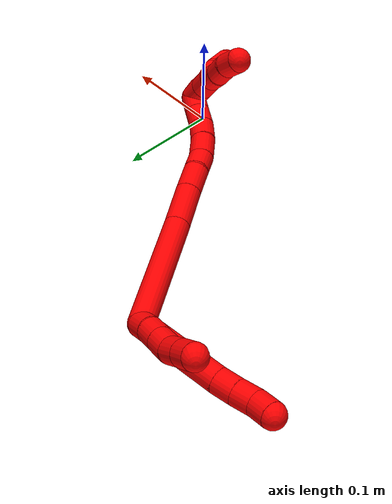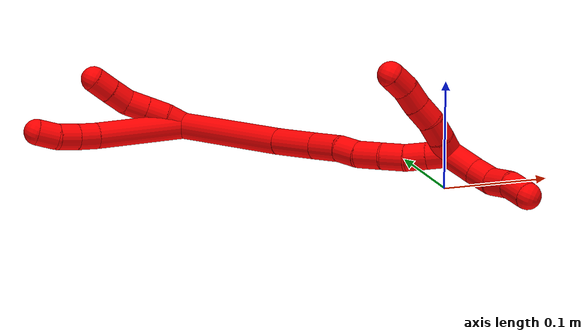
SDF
<sdf version="1.7">
 <world name="default">
  <model name="2">
   <static>0</static>
   <link name="2">
    <collision name="collision-cylinder-e_1_2_8">
     <pose>-0.01622 -0.027544 0.031265 0.722207 -0.371228 -0.141595</pose>
     <geometry><cylinder><radius>0.0125</radius><length>0.089425</length></cylinder></geometry>
     <surface>
      <friction><ode><mu>1.16</mu><mu2>1.16</mu2><slip1>0</slip1><slip2>0</slip2></ode></friction>
      <contact><ode><kp>1e+06</kp><kd>1</kd><max_vel>0</max_vel><min_depth>0.001</min_depth></ode></contact>
     </surface>
    </collision>
    <visual name="visual-cylinder-e_1_2_8">
     <pose>-0.01622 -0.027544 0.031265 0.722207 -0.371228 -0.141595</pose>
     <geometry><cylinder><radius>0.0125</radius><length>0.089425</length></cylinder></geometry>
     <material><ambient>1 0 0 1</ambient></material>
    </visual>
    <collision name="collision-cylinder-e_2_8_9">
     <pose>-0.035395 -0.06168 0.069481 0.75896 -0.299208 -0.120081</pose>
     <geometry><cylinder><radius>0.0125</radius><length>0.020052</length></cylinder></geometry>
     <surface>
      <friction><ode><mu>1.16</mu><mu2>1.16</mu2><slip1>0</slip1><slip2>0</slip2></ode></friction>
      <contact><ode><kp>1e+06</kp><kd>1</kd><max_vel>0</max_vel><min_depth>0.001</min_depth></ode></contact>
     </surface>
    </collision>
    <visual name="visual-cylinder-e_2_8_9">
     <pose>-0.035395 -0.06168 0.069481 0.75896 -0.299208 -0.120081</pose>
     <geometry><cylinder><radius>0.0125</radius><length>0.020052</length></cylinder></geometry>
     <material><ambient>1 0 0 1</ambient></material>
    </visual>
    <collision name="collision-cylinder-e_3_9_10">
     <pose>-0.040736 -0.075056 0.083415 0.770819 -0.240266 -0.097869</pose>
     <geometry><cylinder><radius>0.0125</radius><length>0.020046</length></cylinder></geometry>
     <surface>
      <friction><ode><mu>1.16</mu><mu2>1.16</mu2><slip1>0</slip1><slip2>0</slip2></ode></friction>
      <contact><ode><kp>1e+06</kp><kd>1</kd><max_vel>0</max_vel><min_depth>0.001</min_depth></ode></contact>
     </surface>
    </collision>
    <visual name="visual-cylinder-e_3_9_10">
     <pose>-0.040736 -0.075056 0.083415 0.770819 -0.240266 -0.097869</pose>
     <geometry><cylinder><radius>0.0125</radius><length>0.020046</length></cylinder></geometry>
     <material><ambient>1 0 0 1</ambient></material>
    </visual>
    <collision name="collision-cylinder-e_4_10_6">
     <pose>-0.043921 -0.086902 0.099261 0.519075 -0.078185 -0.02077</pose>
     <geometry><cylinder><radius>0.0125</radius><length>0.020476</length></cylinder></geometry>
     <surface>
      <friction><ode><mu>1.16</mu><mu2>1.16</mu2><slip1>0</slip1><slip2>0</slip2></ode></friction>
      <contact><ode><kp>1e+06</kp><kd>1</kd><max_vel>0</max_vel><min_depth>0.001</min_depth></ode></contact>
     </surface>
    </collision>
    <visual name="visual-cylinder-e_4_10_6">
     <pose>-0.043921 -0.086902 0.099261 0.519075 -0.078185 -0.02077</pose>
     <geometry><cylinder><radius>0.0125</radius><length>0.020476</length></cylinder></geometry>
     <material><ambient>1 0 0 1</ambient></material>
    </visual>
    <collision name="collision-cylinder-e_1_2_11">
     <pose>0.001577 -0.004049 0.009007 0.422487 0.158381 0.034032</pose>
     <geometry><cylinder><radius>0.0125</radius><length>0.02</length></cylinder></geometry>
     <surface>
      <friction><ode><mu>1.16</mu><mu2>1.16</mu2><slip1>0</slip1><slip2>0</slip2></ode></friction>
      <contact><ode><kp>1e+06</kp><kd>1</kd><max_vel>0</max_vel><min_depth>0.001</min_depth></ode></contact>
     </surface>
    </collision>
    <visual name="visual-cylinder-e_1_2_11">
     <pose>0.001577 -0.004049 0.009007 0.422487 0.158381 0.034032</pose>
     <geometry><cylinder><radius>0.0125</radius><length>0.02</length></cylinder></geometry>
     <material><ambient>1 0 0 1</ambient></material>
    </visual>
    <collision name="collision-cylinder-e_2_11_12">
     <pose>0.003198 -0.011859 0.027279 0.385601 0.004371 0.000853</pose>
     <geometry><cylinder><radius>0.0125</radius><length>0.02</length></cylinder></geometry>
     <surface>
      <friction><ode><mu>1.16</mu><mu2>1.16</mu2><slip1>0</slip1><slip2>0</slip2></ode></friction>
      <contact><ode><kp>1e+06</kp><kd>1</kd><max_vel>0</max_vel><min_depth>0.001</min_depth></ode></contact>
     </surface>
    </collision>
    <visual name="visual-cylinder-e_2_11_12">
     <pose>0.003198 -0.011859 0.027279 0.385601 0.004371 0.000853</pose>
     <geometry><cylinder><radius>0.0125</radius><length>0.02</length></cylinder></geometry>
     <material><ambient>1 0 0 1</ambient></material>
    </visual>
    <collision name="collision-cylinder-e_3_12_13">
     <pose>0.003317 -0.019464 0.045776 0.394583 0.007527 0.001505</pose>
     <geometry><cylinder><radius>0.0125</radius><length>0.02</length></cylinder></geometry>
     <surface>
      <friction><ode><mu>1.16</mu><mu2>1.16</mu2><slip1>0</slip1><slip2>0</slip2></ode></friction>
      <contact><ode><kp>1e+06</kp><kd>1</kd><max_vel>0</max_vel><min_depth>0.001</min_depth></ode></contact>
     </surface>
    </collision>
    <visual name="visual-cylinder-e_3_12_13">
     <pose>0.003317 -0.019464 0.045776 0.394583 0.007527 0.001505</pose>
     <geometry><cylinder><radius>0.0125</radius><length>0.02</length></cylinder></geometry>
     <material><ambient>1 0 0 1</ambient></material>
    </visual>
    <collision name="collision-cylinder-e_4_13_14">
     <pose>0.006144 -0.028358 0.063188 0.552926 0.278749 0.079563</pose>
     <geometry><cylinder><radius>0.0125</radius><length>0.02</length></cylinder></geometry>
     <surface>
      <friction><ode><mu>1.16</mu><mu2>1.16</mu2><slip1>0</slip1><slip2>0</slip2></ode></friction>
      <contact><ode><kp>1e+06</kp><kd>1</kd><max_vel>0</max_vel><min_depth>0.001</min_depth></ode></contact>
     </surface>
    </collision>
    <visual name="visual-cylinder-e_4_13_14">
     <pose>0.006144 -0.028358 0.063188 0.552926 0.278749 0.079563</pose>
     <geometry><cylinder><radius>0.0125</radius><length>0.02</length></cylinder></geometry>
     <material><ambient>1 0 0 1</ambient></material>
    </visual>
    <collision name="collision-cylinder-e_5_14_5">
     <pose>0.011798 -0.038038 0.079744 0.505222 0.294507 0.076536</pose>
     <geometry><cylinder><radius>0.0125</radius><length>0.02</length></cylinder></geometry>
     <surface>
      <friction><ode><mu>1.16</mu><mu2>1.16</mu2><slip1>0</slip1><slip2>0</slip2></ode></friction>
      <contact><ode><kp>1e+06</kp><kd>1</kd><max_vel>0</max_vel><min_depth>0.001</min_depth></ode></contact>
     </surface>
    </collision>
    <visual name="visual-cylinder-e_5_14_5">
     <pose>0.011798 -0.038038 0.079744 0.505222 0.294507 0.076536</pose>
     <geometry><cylinder><radius>0.0125</radius><length>0.02</length></cylinder></geometry>
     <material><ambient>1 0 0 1</ambient></material>
    </visual>
    <collision name="collision-cylinder-e_1_2_15">
     <pose>0.015513 -0.024486 -0.052069 2.70203 0.263347 1.0703</pose>
     <geometry><cylinder><radius>0.0125</radius><length>0.119188</length></cylinder></geometry>
     <surface>
      <friction><ode><mu>1.16</mu><mu2>1.16</mu2><slip1>0</slip1><slip2>0</slip2></ode></friction>
      <contact><ode><kp>1e+06</kp><kd>1</kd><max_vel>0</max_vel><min_depth>0.001</min_depth></ode></contact>
     </surface>
    </collision>
    <visual name="visual-cylinder-e_1_2_15">
     <pose>0.015513 -0.024486 -0.052069 2.70203 0.263347 1.0703</pose>
     <geometry><cylinder><radius>0.0125</radius><length>0.119188</length></cylinder></geometry>
     <material><ambient>1 0 0 1</ambient></material>
    </visual>
    <collision name="collision-cylinder-e_2_15_16">
     <pose>0.037434 -0.057777 -0.123055 2.70593 0.29796 1.19176</pose>
     <geometry><cylinder><radius>0.0125</radius><length>0.043655</length></cylinder></geometry>
     <surface>
      <friction><ode><mu>1.16</mu><mu2>1.16</mu2><slip1>0</slip1><slip2>0</slip2></ode></friction>
      <contact><ode><kp>1e+06</kp><kd>1</kd><max_vel>0</max_vel><min_depth>0.001</min_depth></ode></contact>
     </surface>
    </collision>
    <visual name="visual-cylinder-e_2_15_16">
     <pose>0.037434 -0.057777 -0.123055 2.70593 0.29796 1.19176</pose>
     <geometry><cylinder><radius>0.0125</radius><length>0.043655</length></cylinder></geometry>
     <material><ambient>1 0 0 1</ambient></material>
    </visual>
    <collision name="collision-cylinder-e_3_16_17">
     <pose>0.048174 -0.072833 -0.154241 2.6704 0.304789 1.13833</pose>
     <geometry><cylinder><radius>0.0125</radius><length>0.028869</length></cylinder></geometry>
     <surface>
      <friction><ode><mu>1.16</mu><mu2>1.16</mu2><slip1>0</slip1><slip2>0</slip2></ode></friction>
      <contact><ode><kp>1e+06</kp><kd>1</kd><max_vel>0</max_vel><min_depth>0.001</min_depth></ode></contact>
     </surface>
    </collision>
    <visual name="visual-cylinder-e_3_16_17">
     <pose>0.048174 -0.072833 -0.154241 2.6704 0.304789 1.13833</pose>
     <geometry><cylinder><radius>0.0125</radius><length>0.028869</length></cylinder></geometry>
     <material><ambient>1 0 0 1</ambient></material>
    </visual>
    <collision name="collision-cylinder-e_4_17_18">
     <pose>0.054075 -0.083048 -0.176164 2.75195 0.149233 0.724275</pose>
     <geometry><cylinder><radius>0.0125</radius><length>0.021108</length></cylinder></geometry>
     <surface>
      <friction><ode><mu>1.16</mu><mu2>1.16</mu2><slip1>0</slip1><slip2>0</slip2></ode></friction>
      <contact><ode><kp>1e+06</kp><kd>1</kd><max_vel>0</max_vel><min_depth>0.001</min_depth></ode></contact>
     </surface>
    </collision>
    <visual name="visual-cylinder-e_4_17_18">
     <pose>0.054075 -0.083048 -0.176164 2.75195 0.149233 0.724275</pose>
     <geometry><cylinder><radius>0.0125</radius><length>0.021108</length></cylinder></geometry>
     <material><ambient>1 0 0 1</ambient></material>
    </visual>
    <collision name="collision-cylinder-e_5_18_19">
     <pose>0.059798 -0.09015 -0.197182 2.87222 0.338771 1.80149</pose>
     <geometry><cylinder><radius>0.0125</radius><length>0.024998</length></cylinder></geometry>
     <surface>
      <friction><ode><mu>1.16</mu><mu2>1.16</mu2><slip1>0</slip1><slip2>0</slip2></ode></friction>
      <contact><ode><kp>1e+06</kp><kd>1</kd><max_vel>0</max_vel><min_depth>0.001</min_depth></ode></contact>
     </surface>
    </collision>
    <visual name="visual-cylinder-e_5_18_19">
     <pose>0.059798 -0.09015 -0.197182 2.87222 0.338771 1.80149</pose>
     <geometry><cylinder><radius>0.0125</radius><length>0.024998</length></cylinder></geometry>
     <material><ambient>1 0 0 1</ambient></material>
    </visual>
    <collision name="collision-cylinder-e_6_19_20">
     <pose>0.067538 -0.094427 -0.218706 3.02985 0.337427 2.50708</pose>
     <geometry><cylinder><radius>0.0125</radius><length>0.02167</length></cylinder></geometry>
     <surface>
      <friction><ode><mu>1.16</mu><mu2>1.16</mu2><slip1>0</slip1><slip2>0</slip2></ode></friction>
      <contact><ode><kp>1e+06</kp><kd>1</kd><max_vel>0</max_vel><min_depth>0.001</min_depth></ode></contact>
     </surface>
    </collision>
    <visual name="visual-cylinder-e_6_19_20">
     <pose>0.067538 -0.094427 -0.218706 3.02985 0.337427 2.50708</pose>
     <geometry><cylinder><radius>0.0125</radius><length>0.02167</length></cylinder></geometry>
     <material><ambient>1 0 0 1</ambient></material>
    </visual>
    <collision name="collision-cylinder-e_7_20_21">
     <pose>0.075817 -0.095257 -0.237778 -3.10682 0.484309 -3.00102</pose>
     <geometry><cylinder><radius>0.0125</radius><length>0.020152</length></cylinder></geometry>
     <surface>
      <friction><ode><mu>1.16</mu><mu2>1.16</mu2><slip1>0</slip1><slip2>0</slip2></ode></friction>
      <contact><ode><kp>1e+06</kp><kd>1</kd><max_vel>0</max_vel><min_depth>0.001</min_depth></ode></contact>
     </surface>
    </collision>
    <visual name="visual-cylinder-e_7_20_21">
     <pose>0.075817 -0.095257 -0.237778 -3.10682 0.484309 -3.00102</pose>
     <geometry><cylinder><radius>0.0125</radius><length>0.020152</length></cylinder></geometry>
     <material><ambient>1 0 0 1</ambient></material>
    </visual>
    <collision name="collision-cylinder-e_8_21_1">
     <pose>0.085341 -0.094835 -0.255649 -3.12904 0.494712 -3.0919</pose>
     <geometry><cylinder><radius>0.0125</radius><length>0.02036</length></cylinder></geometry>
     <surface>
      <friction><ode><mu>1.16</mu><mu2>1.16</mu2><slip1>0</slip1><slip2>0</slip2></ode></friction>
      <contact><ode><kp>1e+06</kp><kd>1</kd><max_vel>0</max_vel><min_depth>0.001</min_depth></ode></contact>
     </surface>
    </collision>
    <visual name="visual-cylinder-e_8_21_1">
     <pose>0.085341 -0.094835 -0.255649 -3.12904 0.494712 -3.0919</pose>
     <geometry><cylinder><radius>0.0125</radius><length>0.02036</length></cylinder></geometry>
     <material><ambient>1 0 0 1</ambient></material>
    </visual>
    <collision name="collision-cylinder-e_1_1_22">
     <pose>0.096252 -0.100534 -0.259195 0.821004 0.653148 0.292716</pose>
     <geometry><cylinder><radius>0.0125</radius><length>0.02</length></cylinder></geometry>
     <surface>
      <friction><ode><mu>1.16</mu><mu2>1.16</mu2><slip1>0</slip1><slip2>0</slip2></ode></friction>
      <contact><ode><kp>1e+06</kp><kd>1</kd><max_vel>0</max_vel><min_depth>0.001</min_depth></ode></contact>
     </surface>
    </collision>
    <visual name="visual-cylinder-e_1_1_22">
     <pose>0.096252 -0.100534 -0.259195 0.821004 0.653148 0.292716</pose>
     <geometry><cylinder><radius>0.0125</radius><length>0.02</length></cylinder></geometry>
     <material><ambient>1 0 0 1</ambient></material>
    </visual>
    <collision name="collision-cylinder-e_2_22_23">
     <pose>0.108305 -0.111359 -0.247526 0.675372 0.640611 0.231918</pose>
     <geometry><cylinder><radius>0.0125</radius><length>0.02</length></cylinder></geometry>
     <surface>
      <friction><ode><mu>1.16</mu><mu2>1.16</mu2><slip1>0</slip1><slip2>0</slip2></ode></friction>
      <contact><ode><kp>1e+06</kp><kd>1</kd><max_vel>0</max_vel><min_depth>0.001</min_depth></ode></contact>
     </surface>
    </collision>
    <visual name="visual-cylinder-e_2_22_23">
     <pose>0.108305 -0.111359 -0.247526 0.675372 0.640611 0.231918</pose>
     <geometry><cylinder><radius>0.0125</radius><length>0.02</length></cylinder></geometry>
     <material><ambient>1 0 0 1</ambient></material>
    </visual>
    <collision name="collision-cylinder-e_3_23_24">
     <pose>0.118991 -0.120556 -0.233502 0.494229 0.490293 0.126058</pose>
     <geometry><cylinder><radius>0.0125</radius><length>0.02</length></cylinder></geometry>
     <surface>
      <friction><ode><mu>1.16</mu><mu2>1.16</mu2><slip1>0</slip1><slip2>0</slip2></ode></friction>
      <contact><ode><kp>1e+06</kp><kd>1</kd><max_vel>0</max_vel><min_depth>0.001</min_depth></ode></contact>
     </surface>
    </collision>
    <visual name="visual-cylinder-e_3_23_24">
     <pose>0.118991 -0.120556 -0.233502 0.494229 0.490293 0.126058</pose>
     <geometry><cylinder><radius>0.0125</radius><length>0.02</length></cylinder></geometry>
     <material><ambient>1 0 0 1</ambient></material>
    </visual>
    <collision name="collision-cylinder-e_4_24_25">
     <pose>0.129329 -0.129203 -0.218779 0.570366 0.597869 0.180206</pose>
     <geometry><cylinder><radius>0.0125</radius><length>0.02</length></cylinder></geometry>
     <surface>
      <friction><ode><mu>1.16</mu><mu2>1.16</mu2><slip1>0</slip1><slip2>0</slip2></ode></friction>
      <contact><ode><kp>1e+06</kp><kd>1</kd><max_vel>0</max_vel><min_depth>0.001</min_depth></ode></contact>
     </surface>
    </collision>
    <visual name="visual-cylinder-e_4_24_25">
     <pose>0.129329 -0.129203 -0.218779 0.570366 0.597869 0.180206</pose>
     <geometry><cylinder><radius>0.0125</radius><length>0.02</length></cylinder></geometry>
     <material><ambient>1 0 0 1</ambient></material>
    </visual>
    <collision name="collision-cylinder-e_5_25_4">
     <pose>0.138772 -0.139442 -0.204605 0.674963 0.391319 0.138872</pose>
     <geometry><cylinder><radius>0.0125</radius><length>0.02</length></cylinder></geometry>
     <surface>
      <friction><ode><mu>1.16</mu><mu2>1.16</mu2><slip1>0</slip1><slip2>0</slip2></ode></friction>
      <contact><ode><kp>1e+06</kp><kd>1</kd><max_vel>0</max_vel><min_depth>0.001</min_depth></ode></contact>
     </surface>
    </collision>
    <visual name="visual-cylinder-e_5_25_4">
     <pose>0.138772 -0.139442 -0.204605 0.674963 0.391319 0.138872</pose>
     <geometry><cylinder><radius>0.0125</radius><length>0.02</length></cylinder></geometry>
     <material><ambient>1 0 0 1</ambient></material>
    </visual>
    <collision name="collision-cylinder-e_1_1_26">
     <pose>0.088063 -0.099008 -0.279277 2.85736 -0.137281 -0.89583</pose>
     <geometry><cylinder><radius>0.0125</radius><length>0.030855</length></cylinder></geometry>
     <surface>
      <friction><ode><mu>1.16</mu><mu2>1.16</mu2><slip1>0</slip1><slip2>0</slip2></ode></friction>
      <contact><ode><kp>1e+06</kp><kd>1</kd><max_vel>0</max_vel><min_depth>0.001</min_depth></ode></contact>
     </surface>
    </collision>
    <visual name="visual-cylinder-e_1_1_26">
     <pose>0.088063 -0.099008 -0.279277 2.85736 -0.137281 -0.89583</pose>
     <geometry><cylinder><radius>0.0125</radius><length>0.030855</length></cylinder></geometry>
     <material><ambient>1 0 0 1</ambient></material>
    </visual>
    <collision name="collision-cylinder-e_2_26_27">
     <pose>0.085518 -0.108687 -0.303474 2.62652 -0.039647 -0.150267</pose>
     <geometry><cylinder><radius>0.0125</radius><length>0.021914</length></cylinder></geometry>
     <surface>
      <friction><ode><mu>1.16</mu><mu2>1.16</mu2><slip1>0</slip1><slip2>0</slip2></ode></friction>
      <contact><ode><kp>1e+06</kp><kd>1</kd><max_vel>0</max_vel><min_depth>0.001</min_depth></ode></contact>
     </surface>
    </collision>
    <visual name="visual-cylinder-e_2_26_27">
     <pose>0.085518 -0.108687 -0.303474 2.62652 -0.039647 -0.150267</pose>
     <geometry><cylinder><radius>0.0125</radius><length>0.021914</length></cylinder></geometry>
     <material><ambient>1 0 0 1</ambient></material>
    </visual>
    <collision name="collision-cylinder-e_3_27_28">
     <pose>0.087859 -0.120381 -0.321816 2.52098 0.250768 0.749045</pose>
     <geometry><cylinder><radius>0.0125</radius><length>0.022369</length></cylinder></geometry>
     <surface>
      <friction><ode><mu>1.16</mu><mu2>1.16</mu2><slip1>0</slip1><slip2>0</slip2></ode></friction>
      <contact><ode><kp>1e+06</kp><kd>1</kd><max_vel>0</max_vel><min_depth>0.001</min_depth></ode></contact>
     </surface>
    </collision>
    <visual name="visual-cylinder-e_3_27_28">
     <pose>0.087859 -0.120381 -0.321816 2.52098 0.250768 0.749045</pose>
     <geometry><cylinder><radius>0.0125</radius><length>0.022369</length></cylinder></geometry>
     <material><ambient>1 0 0 1</ambient></material>
    </visual>
    <collision name="collision-cylinder-e_4_28_3">
     <pose>0.090248 -0.134243 -0.340489 2.48729 -0.031084 -0.091544</pose>
     <geometry><cylinder><radius>0.0125</radius><length>0.024862</length></cylinder></geometry>
     <surface>
      <friction><ode><mu>1.16</mu><mu2>1.16</mu2><slip1>0</slip1><slip2>0</slip2></ode></friction>
      <contact><ode><kp>1e+06</kp><kd>1</kd><max_vel>0</max_vel><min_depth>0.001</min_depth></ode></contact>
     </surface>
    </collision>
    <visual name="visual-cylinder-e_4_28_3">
     <pose>0.090248 -0.134243 -0.340489 2.48729 -0.031084 -0.091544</pose>
     <geometry><cylinder><radius>0.0125</radius><length>0.024862</length></cylinder></geometry>
     <material><ambient>1 0 0 1</ambient></material>
    </visual>
    <collision name="collision-sphere-3">
     <pose>0.089862 -0.141805 -0.350348 0 -0 0</pose>
     <geometry><sphere><radius>0.0125</radius></sphere></geometry>
     <surface>
      <friction><ode><mu>1.16</mu><mu2>1.16</mu2><slip1>0</slip1><slip2>0</slip2></ode></friction>
      <contact><ode><kp>1e+06</kp><kd>1</kd><max_vel>0</max_vel><min_depth>0.001</min_depth></ode></contact>
     </surface>
    </collision>
    <visual name="visual-sphere-3">
     <pose>0.089862 -0.141805 -0.350348 0 -0 0</pose>
     <geometry><sphere><radius>0.0125</radius></sphere></geometry>
     <material><ambient>1 0 0 1</ambient></material>
    </visual>
    <collision name="collision-sphere-28">
     <pose>0.090634 -0.126681 -0.33063 0 -0 0</pose>
     <geometry><sphere><radius>0.0125</radius></sphere></geometry>
     <surface>
      <friction><ode><mu>1.16</mu><mu2>1.16</mu2><slip1>0</slip1><slip2>0</slip2></ode></friction>
      <contact><ode><kp>1e+06</kp><kd>1</kd><max_vel>0</max_vel><min_depth>0.001</min_depth></ode></contact>
     </surface>
    </collision>
    <visual name="visual-sphere-28">
     <pose>0.090634 -0.126681 -0.33063 0 -0 0</pose>
     <geometry><sphere><radius>0.0125</radius></sphere></geometry>
     <material><ambient>1 0 0 1</ambient></material>
    </visual>
    <collision name="collision-sphere-27">
     <pose>0.085083 -0.11408 -0.313002 0 -0 0</pose>
     <geometry><sphere><radius>0.0125</radius></sphere></geometry>
     <surface>
      <friction><ode><mu>1.16</mu><mu2>1.16</mu2><slip1>0</slip1><slip2>0</slip2></ode></friction>
      <contact><ode><kp>1e+06</kp><kd>1</kd><max_vel>0</max_vel><min_depth>0.001</min_depth></ode></contact>
     </surface>
    </collision>
    <visual name="visual-sphere-27">
     <pose>0.085083 -0.11408 -0.313002 0 -0 0</pose>
     <geometry><sphere><radius>0.0125</radius></sphere></geometry>
     <material><ambient>1 0 0 1</ambient></material>
    </visual>
    <collision name="collision-sphere-26">
     <pose>0.085952 -0.103293 -0.293946 0 -0 0</pose>
     <geometry><sphere><radius>0.0125</radius></sphere></geometry>
     <surface>
      <friction><ode><mu>1.16</mu><mu2>1.16</mu2><slip1>0</slip1><slip2>0</slip2></ode></friction>
      <contact><ode><kp>1e+06</kp><kd>1</kd><max_vel>0</max_vel><min_depth>0.001</min_depth></ode></contact>
     </surface>
    </collision>
    <visual name="visual-sphere-26">
     <pose>0.085952 -0.103293 -0.293946 0 -0 0</pose>
     <geometry><sphere><radius>0.0125</radius></sphere></geometry>
     <material><ambient>1 0 0 1</ambient></material>
    </visual>
    <collision name="collision-sphere-4">
     <pose>0.142586 -0.145219 -0.197388 0 -0 0</pose>
     <geometry><sphere><radius>0.0125</radius></sphere></geometry>
     <surface>
      <friction><ode><mu>1.16</mu><mu2>1.16</mu2><slip1>0</slip1><slip2>0</slip2></ode></friction>
      <contact><ode><kp>1e+06</kp><kd>1</kd><max_vel>0</max_vel><min_depth>0.001</min_depth></ode></contact>
     </surface>
    </collision>
    <visual name="visual-sphere-4">
     <pose>0.142586 -0.145219 -0.197388 0 -0 0</pose>
     <geometry><sphere><radius>0.0125</radius></sphere></geometry>
     <material><ambient>1 0 0 1</ambient></material>
    </visual>
    <collision name="collision-sphere-25">
     <pose>0.134957 -0.133666 -0.211822 0 -0 0</pose>
     <geometry><sphere><radius>0.0125</radius></sphere></geometry>
     <surface>
      <friction><ode><mu>1.16</mu><mu2>1.16</mu2><slip1>0</slip1><slip2>0</slip2></ode></friction>
      <contact><ode><kp>1e+06</kp><kd>1</kd><max_vel>0</max_vel><min_depth>0.001</min_depth></ode></contact>
     </surface>
    </collision>
    <visual name="visual-sphere-25">
     <pose>0.134957 -0.133666 -0.211822 0 -0 0</pose>
     <geometry><sphere><radius>0.0125</radius></sphere></geometry>
     <material><ambient>1 0 0 1</ambient></material>
    </visual>
    <collision name="collision-sphere-24">
     <pose>0.1237 -0.124741 -0.225736 0 -0 0</pose>
     <geometry><sphere><radius>0.0125</radius></sphere></geometry>
     <surface>
      <friction><ode><mu>1.16</mu><mu2>1.16</mu2><slip1>0</slip1><slip2>0</slip2></ode></friction>
      <contact><ode><kp>1e+06</kp><kd>1</kd><max_vel>0</max_vel><min_depth>0.001</min_depth></ode></contact>
     </surface>
    </collision>
    <visual name="visual-sphere-24">
     <pose>0.1237 -0.124741 -0.225736 0 -0 0</pose>
     <geometry><sphere><radius>0.0125</radius></sphere></geometry>
     <material><ambient>1 0 0 1</ambient></material>
    </visual>
    <collision name="collision-sphere-23">
     <pose>0.114282 -0.116371 -0.241268 0 -0 0</pose>
     <geometry><sphere><radius>0.0125</radius></sphere></geometry>
     <surface>
      <friction><ode><mu>1.16</mu><mu2>1.16</mu2><slip1>0</slip1><slip2>0</slip2></ode></friction>
      <contact><ode><kp>1e+06</kp><kd>1</kd><max_vel>0</max_vel><min_depth>0.001</min_depth></ode></contact>
     </surface>
    </collision>
    <visual name="visual-sphere-23">
     <pose>0.114282 -0.116371 -0.241268 0 -0 0</pose>
     <geometry><sphere><radius>0.0125</radius></sphere></geometry>
     <material><ambient>1 0 0 1</ambient></material>
    </visual>
    <collision name="collision-sphere-22">
     <pose>0.102328 -0.106346 -0.253783 0 -0 0</pose>
     <geometry><sphere><radius>0.0125</radius></sphere></geometry>
     <surface>
      <friction><ode><mu>1.16</mu><mu2>1.16</mu2><slip1>0</slip1><slip2>0</slip2></ode></friction>
      <contact><ode><kp>1e+06</kp><kd>1</kd><max_vel>0</max_vel><min_depth>0.001</min_depth></ode></contact>
     </surface>
    </collision>
    <visual name="visual-sphere-22">
     <pose>0.102328 -0.106346 -0.253783 0 -0 0</pose>
     <geometry><sphere><radius>0.0125</radius></sphere></geometry>
     <material><ambient>1 0 0 1</ambient></material>
    </visual>
    <collision name="collision-sphere-1">
     <pose>0.090175 -0.094722 -0.264607 0 -0 0</pose>
     <geometry><sphere><radius>0.0125</radius></sphere></geometry>
     <surface>
      <friction><ode><mu>1.16</mu><mu2>1.16</mu2><slip1>0</slip1><slip2>0</slip2></ode></friction>
      <contact><ode><kp>1e+06</kp><kd>1</kd><max_vel>0</max_vel><min_depth>0.001</min_depth></ode></contact>
     </surface>
    </collision>
    <visual name="visual-sphere-1">
     <pose>0.090175 -0.094722 -0.264607 0 -0 0</pose>
     <geometry><sphere><radius>0.0125</radius></sphere></geometry>
     <material><ambient>1 0 0 1</ambient></material>
    </visual>
    <collision name="collision-sphere-21">
     <pose>0.080508 -0.094947 -0.24669 0 -0 0</pose>
     <geometry><sphere><radius>0.0125</radius></sphere></geometry>
     <surface>
      <friction><ode><mu>1.16</mu><mu2>1.16</mu2><slip1>0</slip1><slip2>0</slip2></ode></friction>
      <contact><ode><kp>1e+06</kp><kd>1</kd><max_vel>0</max_vel><min_depth>0.001</min_depth></ode></contact>
     </surface>
    </collision>
    <visual name="visual-sphere-21">
     <pose>0.080508 -0.094947 -0.24669 0 -0 0</pose>
     <geometry><sphere><radius>0.0125</radius></sphere></geometry>
     <material><ambient>1 0 0 1</ambient></material>
    </visual>
    <collision name="collision-sphere-11">
     <pose>0.003154 -0.008098 0.018013 0 -0 0</pose>
     <geometry><sphere><radius>0.0125</radius></sphere></geometry>
     <surface>
      <friction><ode><mu>1.16</mu><mu2>1.16</mu2><slip1>0</slip1><slip2>0</slip2></ode></friction>
      <contact><ode><kp>1e+06</kp><kd>1</kd><max_vel>0</max_vel><min_depth>0.001</min_depth></ode></contact>
     </surface>
    </collision>
    <visual name="visual-sphere-11">
     <pose>0.003154 -0.008098 0.018013 0 -0 0</pose>
     <geometry><sphere><radius>0.0125</radius></sphere></geometry>
     <material><ambient>1 0 0 1</ambient></material>
    </visual>
    <collision name="collision-sphere-6">
     <pose>-0.04472 -0.091966 0.108124 0 -0 0</pose>
     <geometry><sphere><radius>0.0125</radius></sphere></geometry>
     <surface>
      <friction><ode><mu>1.16</mu><mu2>1.16</mu2><slip1>0</slip1><slip2>0</slip2></ode></friction>
      <contact><ode><kp>1e+06</kp><kd>1</kd><max_vel>0</max_vel><min_depth>0.001</min_depth></ode></contact>
     </surface>
    </collision>
    <visual name="visual-sphere-6">
     <pose>-0.04472 -0.091966 0.108124 0 -0 0</pose>
     <geometry><sphere><radius>0.0125</radius></sphere></geometry>
     <material><ambient>1 0 0 1</ambient></material>
    </visual>
    <collision name="collision-sphere-10">
     <pose>-0.043121 -0.081839 0.090399 0 -0 0</pose>
     <geometry><sphere><radius>0.0125</radius></sphere></geometry>
     <surface>
      <friction><ode><mu>1.16</mu><mu2>1.16</mu2><slip1>0</slip1><slip2>0</slip2></ode></friction>
      <contact><ode><kp>1e+06</kp><kd>1</kd><max_vel>0</max_vel><min_depth>0.001</min_depth></ode></contact>
     </surface>
    </collision>
    <visual name="visual-sphere-10">
     <pose>-0.043121 -0.081839 0.090399 0 -0 0</pose>
     <geometry><sphere><radius>0.0125</radius></sphere></geometry>
     <material><ambient>1 0 0 1</ambient></material>
    </visual>
    <collision name="collision-sphere-9">
     <pose>-0.038351 -0.068273 0.076432 0 -0 0</pose>
     <geometry><sphere><radius>0.0125</radius></sphere></geometry>
     <surface>
      <friction><ode><mu>1.16</mu><mu2>1.16</mu2><slip1>0</slip1><slip2>0</slip2></ode></friction>
      <contact><ode><kp>1e+06</kp><kd>1</kd><max_vel>0</max_vel><min_depth>0.001</min_depth></ode></contact>
     </surface>
    </collision>
    <visual name="visual-sphere-9">
     <pose>-0.038351 -0.068273 0.076432 0 -0 0</pose>
     <geometry><sphere><radius>0.0125</radius></sphere></geometry>
     <material><ambient>1 0 0 1</ambient></material>
    </visual>
    <collision name="collision-sphere-2">
     <geometry><sphere><radius>0.0125</radius></sphere></geometry>
     <surface>
      <friction><ode><mu>1.16</mu><mu2>1.16</mu2><slip1>0</slip1><slip2>0</slip2></ode></friction>
      <contact><ode><kp>1e+06</kp><kd>1</kd><max_vel>0</max_vel><min_depth>0.001</min_depth></ode></contact>
     </surface>
    </collision>
    <visual name="visual-sphere-2">
     <geometry><sphere><radius>0.0125</radius></sphere></geometry>
     <material><ambient>1 0 0 1</ambient></material>
    </visual>
    <collision name="collision-sphere-19">
     <pose>0.063951 -0.093287 -0.208546 0 -0 0</pose>
     <geometry><sphere><radius>0.0125</radius></sphere></geometry>
     <surface>
      <friction><ode><mu>1.16</mu><mu2>1.16</mu2><slip1>0</slip1><slip2>0</slip2></ode></friction>
      <contact><ode><kp>1e+06</kp><kd>1</kd><max_vel>0</max_vel><min_depth>0.001</min_depth></ode></contact>
     </surface>
    </collision>
    <visual name="visual-sphere-19">
     <pose>0.063951 -0.093287 -0.208546 0 -0 0</pose>
     <geometry><sphere><radius>0.0125</radius></sphere></geometry>
     <material><ambient>1 0 0 1</ambient></material>
    </visual>
    <collision name="collision-sphere-8">
     <pose>-0.03244 -0.055087 0.062529 0 -0 0</pose>
     <geometry><sphere><radius>0.0125</radius></sphere></geometry>
     <surface>
      <friction><ode><mu>1.16</mu><mu2>1.16</mu2><slip1>0</slip1><slip2>0</slip2></ode></friction>
      <contact><ode><kp>1e+06</kp><kd>1</kd><max_vel>0</max_vel><min_depth>0.001</min_depth></ode></contact>
     </surface>
    </collision>
    <visual name="visual-sphere-8">
     <pose>-0.03244 -0.055087 0.062529 0 -0 0</pose>
     <geometry><sphere><radius>0.0125</radius></sphere></geometry>
     <material><ambient>1 0 0 1</ambient></material>
    </visual>
    <collision name="collision-sphere-12">
     <pose>0.003242 -0.01562 0.036544 0 -0 0</pose>
     <geometry><sphere><radius>0.0125</radius></sphere></geometry>
     <surface>
      <friction><ode><mu>1.16</mu><mu2>1.16</mu2><slip1>0</slip1><slip2>0</slip2></ode></friction>
      <contact><ode><kp>1e+06</kp><kd>1</kd><max_vel>0</max_vel><min_depth>0.001</min_depth></ode></contact>
     </surface>
    </collision>
    <visual name="visual-sphere-12">
     <pose>0.003242 -0.01562 0.036544 0 -0 0</pose>
     <geometry><sphere><radius>0.0125</radius></sphere></geometry>
     <material><ambient>1 0 0 1</ambient></material>
    </visual>
    <collision name="collision-sphere-13">
     <pose>0.003392 -0.023308 0.055007 0 -0 0</pose>
     <geometry><sphere><radius>0.0125</radius></sphere></geometry>
     <surface>
      <friction><ode><mu>1.16</mu><mu2>1.16</mu2><slip1>0</slip1><slip2>0</slip2></ode></friction>
      <contact><ode><kp>1e+06</kp><kd>1</kd><max_vel>0</max_vel><min_depth>0.001</min_depth></ode></contact>
     </surface>
    </collision>
    <visual name="visual-sphere-13">
     <pose>0.003392 -0.023308 0.055007 0 -0 0</pose>
     <geometry><sphere><radius>0.0125</radius></sphere></geometry>
     <material><ambient>1 0 0 1</ambient></material>
    </visual>
    <collision name="collision-sphere-14">
     <pose>0.008895 -0.033407 0.07137 0 -0 0</pose>
     <geometry><sphere><radius>0.0125</radius></sphere></geometry>
     <surface>
      <friction><ode><mu>1.16</mu><mu2>1.16</mu2><slip1>0</slip1><slip2>0</slip2></ode></friction>
      <contact><ode><kp>1e+06</kp><kd>1</kd><max_vel>0</max_vel><min_depth>0.001</min_depth></ode></contact>
     </surface>
    </collision>
    <visual name="visual-sphere-14">
     <pose>0.008895 -0.033407 0.07137 0 -0 0</pose>
     <geometry><sphere><radius>0.0125</radius></sphere></geometry>
     <material><ambient>1 0 0 1</ambient></material>
    </visual>
    <collision name="collision-sphere-5">
     <pose>0.014701 -0.04267 0.088118 0 -0 0</pose>
     <geometry><sphere><radius>0.0125</radius></sphere></geometry>
     <surface>
      <friction><ode><mu>1.16</mu><mu2>1.16</mu2><slip1>0</slip1><slip2>0</slip2></ode></friction>
      <contact><ode><kp>1e+06</kp><kd>1</kd><max_vel>0</max_vel><min_depth>0.001</min_depth></ode></contact>
     </surface>
    </collision>
    <visual name="visual-sphere-5">
     <pose>0.014701 -0.04267 0.088118 0 -0 0</pose>
     <geometry><sphere><radius>0.0125</radius></sphere></geometry>
     <material><ambient>1 0 0 1</ambient></material>
    </visual>
    <collision name="collision-sphere-15">
     <pose>0.031026 -0.048971 -0.104139 0 -0 0</pose>
     <geometry><sphere><radius>0.0125</radius></sphere></geometry>
     <surface>
      <friction><ode><mu>1.16</mu><mu2>1.16</mu2><slip1>0</slip1><slip2>0</slip2></ode></friction>
      <contact><ode><kp>1e+06</kp><kd>1</kd><max_vel>0</max_vel><min_depth>0.001</min_depth></ode></contact>
     </surface>
    </collision>
    <visual name="visual-sphere-15">
     <pose>0.031026 -0.048971 -0.104139 0 -0 0</pose>
     <geometry><sphere><radius>0.0125</radius></sphere></geometry>
     <material><ambient>1 0 0 1</ambient></material>
    </visual>
    <collision name="collision-sphere-16">
     <pose>0.043842 -0.066582 -0.141972 0 -0 0</pose>
     <geometry><sphere><radius>0.0125</radius></sphere></geometry>
     <surface>
      <friction><ode><mu>1.16</mu><mu2>1.16</mu2><slip1>0</slip1><slip2>0</slip2></ode></friction>
      <contact><ode><kp>1e+06</kp><kd>1</kd><max_vel>0</max_vel><min_depth>0.001</min_depth></ode></contact>
     </surface>
    </collision>
    <visual name="visual-sphere-16">
     <pose>0.043842 -0.066582 -0.141972 0 -0 0</pose>
     <geometry><sphere><radius>0.0125</radius></sphere></geometry>
     <material><ambient>1 0 0 1</ambient></material>
    </visual>
    <collision name="collision-sphere-17">
     <pose>0.052505 -0.079084 -0.16651 0 -0 0</pose>
     <geometry><sphere><radius>0.0125</radius></sphere></geometry>
     <surface>
      <friction><ode><mu>1.16</mu><mu2>1.16</mu2><slip1>0</slip1><slip2>0</slip2></ode></friction>
      <contact><ode><kp>1e+06</kp><kd>1</kd><max_vel>0</max_vel><min_depth>0.001</min_depth></ode></contact>
     </surface>
    </collision>
    <visual name="visual-sphere-17">
     <pose>0.052505 -0.079084 -0.16651 0 -0 0</pose>
     <geometry><sphere><radius>0.0125</radius></sphere></geometry>
     <material><ambient>1 0 0 1</ambient></material>
    </visual>
    <collision name="collision-sphere-18">
     <pose>0.055644 -0.087013 -0.185819 0 -0 0</pose>
     <geometry><sphere><radius>0.0125</radius></sphere></geometry>
     <surface>
      <friction><ode><mu>1.16</mu><mu2>1.16</mu2><slip1>0</slip1><slip2>0</slip2></ode></friction>
      <contact><ode><kp>1e+06</kp><kd>1</kd><max_vel>0</max_vel><min_depth>0.001</min_depth></ode></contact>
     </surface>
    </collision>
    <visual name="visual-sphere-18">
     <pose>0.055644 -0.087013 -0.185819 0 -0 0</pose>
     <geometry><sphere><radius>0.0125</radius></sphere></geometry>
     <material><ambient>1 0 0 1</ambient></material>
    </visual>
    <collision name="collision-sphere-20">
     <pose>0.071126 -0.095567 -0.228866 0 -0 0</pose>
     <geometry><sphere><radius>0.0125</radius></sphere></geometry>
     <surface>
      <friction><ode><mu>1.16</mu><mu2>1.16</mu2><slip1>0</slip1><slip2>0</slip2></ode></friction>
      <contact><ode><kp>1e+06</kp><kd>1</kd><max_vel>0</max_vel><min_depth>0.001</min_depth></ode></contact>
     </surface>
    </collision>
    <visual name="visual-sphere-20">
     <pose>0.071126 -0.095567 -0.228866 0 -0 0</pose>
     <geometry><sphere><radius>0.0125</radius></sphere></geometry>
     <material><ambient>1 0 0 1</ambient></material>
    </visual>
    <inertial>
     <pose>0.039356 -0.066606 -0.108299 0 -0 0</pose>
     <mass>0.75</mass>
     <inertia>
      <ixx>0.000289</ixx>
      <ixy>0</ixy>
      <ixz>0</ixz>
      <iyy>0.000114</iyy>
      <iyz>0</iyz>
      <izz>8.7e-05</izz>
     </inertia>
    </inertial>
   </link>
   <pose>-0.175076 0.239158 0.012393 -0.533415 -1.19373 -0.08025</pose>
  </model>
 </world>
</sdf>
